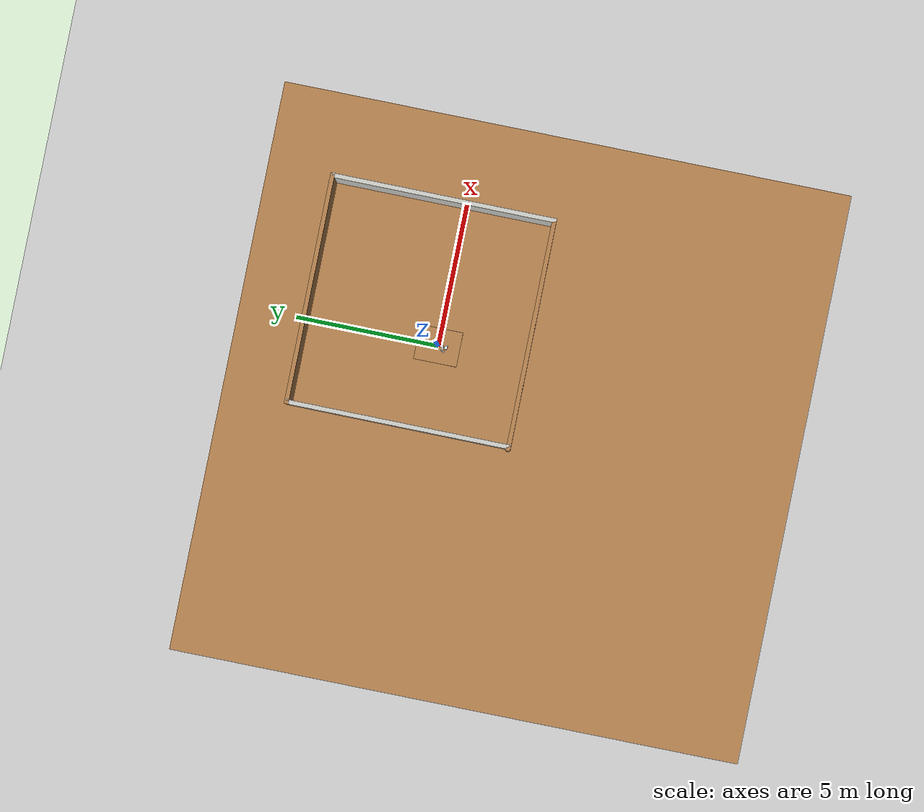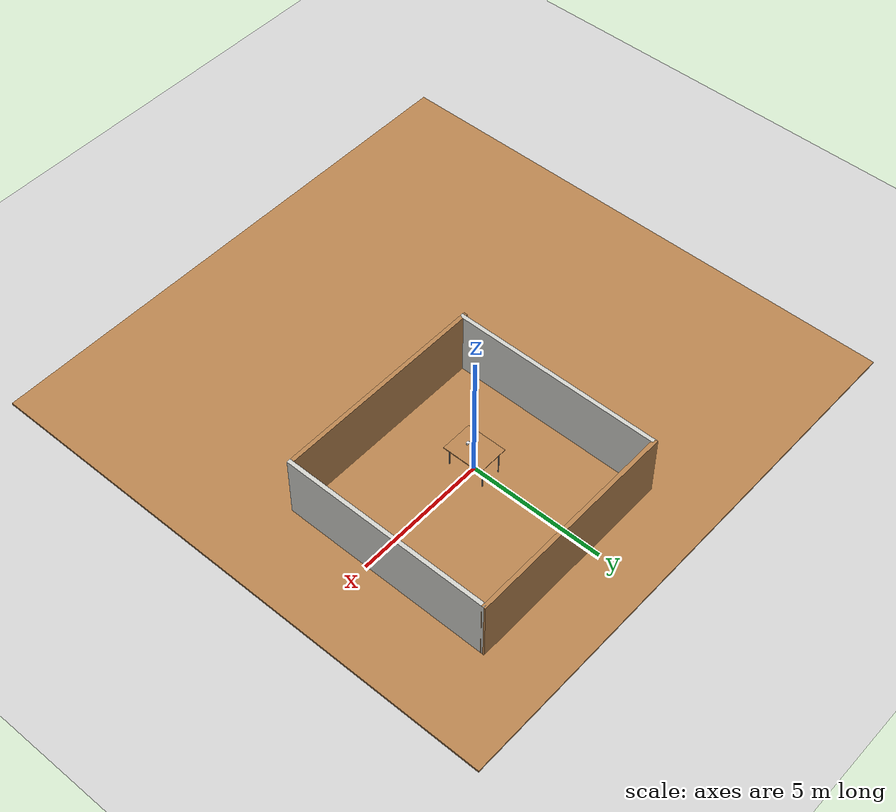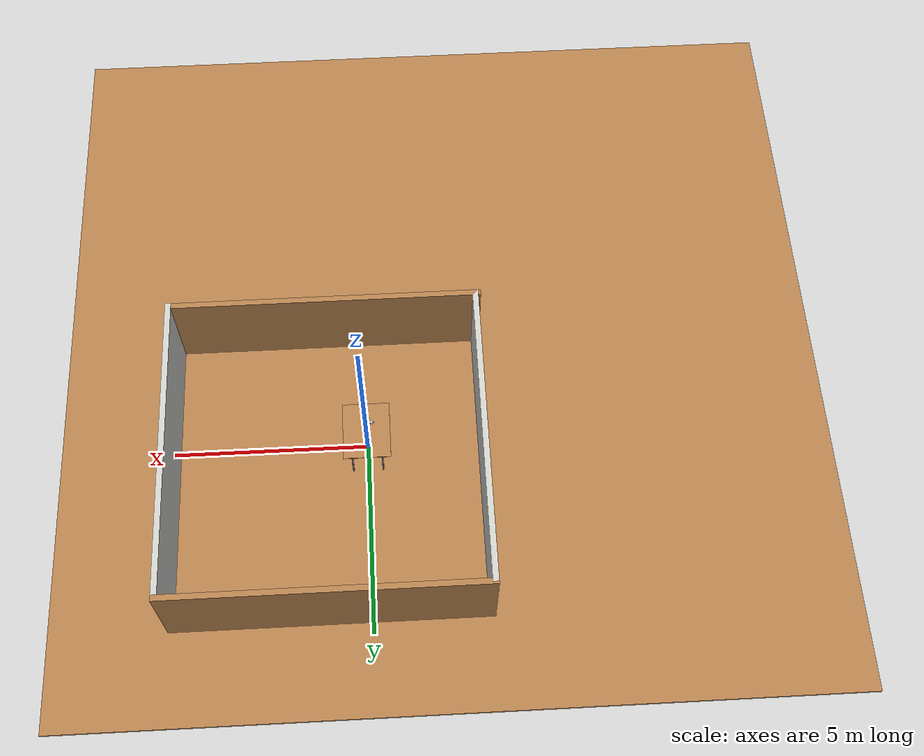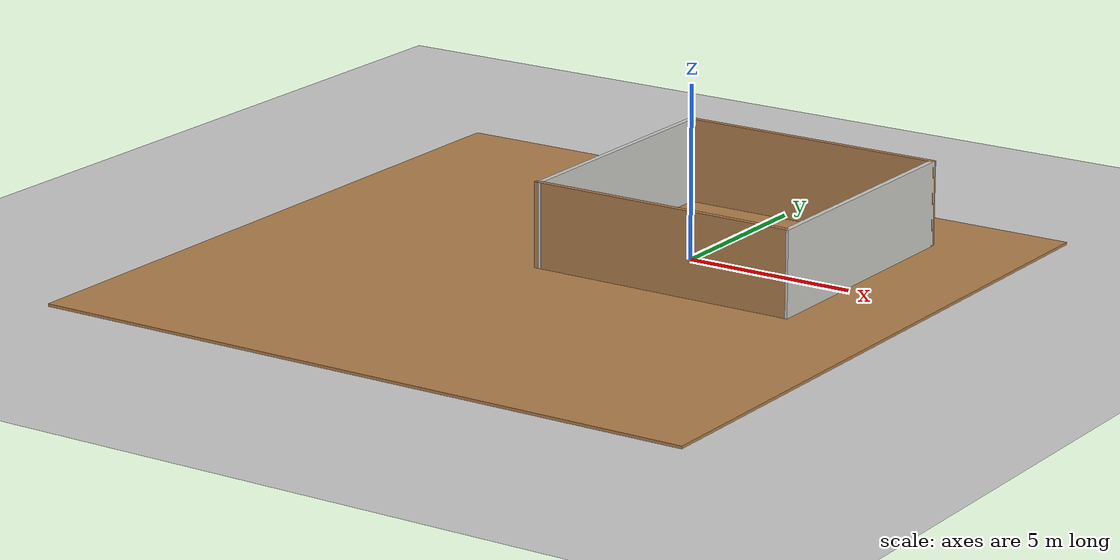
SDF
<sdf version="1.6">
 <world name="default">
  <model name="ground_plane">
   <static>1</static>
   <link name="link">
    <collision name="collision">
     <geometry><plane><normal>0 0 1</normal><size>100 100</size></plane></geometry>
     <surface><friction><ode><mu>100</mu><mu2>50</mu2></ode></friction></surface>
    </collision>
    <visual name="visual">
     <cast_shadows>0</cast_shadows>
     <geometry><plane><normal>0 0 1</normal><size>100 100</size></plane></geometry>
     <material>
      <script><uri>file://media/materials/scripts/gazebo.material</uri><name>Gazebo/Grey</name></script>
     </material>
    </visual>
   </link>
  </model>
  <gravity>0 0 -9.8</gravity>
  <magnetic_field>6e-06 2.3e-05 -4.2e-05</magnetic_field>
  <atmosphere type="adiabatic"/>
  <physics name="default_physics" default="0" type="ode">
   <max_step_size>0.001</max_step_size>
   <real_time_factor>1</real_time_factor>
   <real_time_update_rate>1000</real_time_update_rate>
  </physics>
  <scene><ambient>0.4 0.4 0.4 1</ambient><background>0.7 0.7 0.7 1</background><shadows>1</shadows></scene>
  <spherical_coordinates>
   <surface_model>EARTH_WGS84</surface_model>
   <latitude_deg>0</latitude_deg>
   <longitude_deg>0</longitude_deg>
   <elevation>0</elevation>
   <heading_deg>0</heading_deg>
  </spherical_coordinates>
  <model name="IMR_table">
   <static>1</static>
   <link name="link">
    <collision name="surface">
     <pose>0 0 1 0 -0 0</pose>
     <geometry><box><size>1.5 1.2 0.03</size></box></geometry>
     <surface><friction><ode><mu>0.6</mu><mu2>0.6</mu2></ode></friction></surface>
    </collision>
    <visual name="visual1">
     <pose>0 0 1 0 -0 0</pose>
     <geometry><box><size>1.5 1.2 0.03</size></box></geometry>
     <material>
      <script>
       <uri>model://IMR_table/materials/scripts/</uri>
       <uri>model://IMR_table/materials/textures/</uri>
       <name>LIGHTWOOD</name>
      </script>
     </material>
    </visual>
    <collision name="front_left_leg">
     <pose>0.68 0.38 0.5 0 -0 0</pose>
     <geometry><cylinder><radius>0.02</radius><length>1</length></cylinder></geometry>
    </collision>
    <visual name="front_left_leg">
     <pose>0.68 0.38 0.5 0 -0 0</pose>
     <geometry><cylinder><radius>0.02</radius><length>1</length></cylinder></geometry>
     <material>
      <script><uri>file://media/materials/scripts/gazebo.material</uri><name>Gazebo/Grey</name></script>
     </material>
    </visual>
    <collision name="front_right_leg">
     <pose>0.68 -0.38 0.5 0 -0 0</pose>
     <geometry><cylinder><radius>0.02</radius><length>1</length></cylinder></geometry>
    </collision>
    <visual name="front_right_leg">
     <pose>0.68 -0.38 0.5 0 -0 0</pose>
     <geometry><cylinder><radius>0.02</radius><length>1</length></cylinder></geometry>
     <material>
      <script><uri>file://media/materials/scripts/gazebo.material</uri><name>Gazebo/Grey</name></script>
     </material>
    </visual>
    <collision name="back_right_leg">
     <pose>-0.68 -0.38 0.5 0 -0 0</pose>
     <geometry><cylinder><radius>0.02</radius><length>1</length></cylinder></geometry>
    </collision>
    <visual name="back_right_leg">
     <pose>-0.68 -0.38 0.5 0 -0 0</pose>
     <geometry><cylinder><radius>0.02</radius><length>1</length></cylinder></geometry>
     <material>
      <script><uri>file://media/materials/scripts/gazebo.material</uri><name>Gazebo/Grey</name></script>
     </material>
    </visual>
    <collision name="back_left_leg">
     <pose>-0.68 0.38 0.5 0 -0 0</pose>
     <geometry><cylinder><radius>0.02</radius><length>1</length></cylinder></geometry>
    </collision>
    <visual name="back_left_leg">
     <pose>-0.68 0.38 0.5 0 -0 0</pose>
     <geometry><cylinder><radius>0.02</radius><length>1</length></cylinder></geometry>
     <material>
      <script><uri>file://media/materials/scripts/gazebo.material</uri><name>Gazebo/Grey</name></script>
     </material>
    </visual>
   </link>
   <pose>0 0 0 0 0 -1.5708</pose>
  </model>
  <model name="densefusion_chimp">
   <link name="link_2">
    <pose>0 0 0.045854 0 -0 0</pose>
    <visual name="visual">
     <geometry>
      <mesh><uri>model://densefusion_chimp/meshes/chimp.dae</uri><scale>0.001 0.001 0.001</scale></mesh>
     </geometry>
     <material>
      <lighting>1</lighting>
      <ambient>0 1 0 1</ambient>
      <diffuse>1 1 1 1</diffuse>
      <specular>0.01 0.01 0.01 1</specular>
      <emissive>0 0 0 1</emissive>
     </material>
    </visual>
    <collision name="collision">
     <geometry>
      <mesh><uri>model://densefusion_chimp/meshes/chimp.dae</uri><scale>0.001 0.001 0.001</scale></mesh>
     </geometry>
    </collision>
   </link>
   <static>1</static>
   <pose>-0.163166 -0.205481 1.015 0 0 -2.03728</pose>
  </model>
  <model name="densefusion_drill">
   <link name="link_2">
    <pose>0 0 0.103768 0 -0 0</pose>
    <visual name="visual">
     <geometry>
      <mesh><uri>model://densefusion_drill/meshes/drill.dae</uri><scale>0.001 0.001 0.001</scale></mesh>
     </geometry>
     <material>
      <lighting>1</lighting>
      <ambient>0 1 1 1</ambient>
      <diffuse>1 1 1 1</diffuse>
      <specular>0.01 0.01 0.01 1</specular>
      <emissive>0 0 0 1</emissive>
     </material>
    </visual>
    <collision name="collision">
     <geometry>
      <mesh><uri>model://densefusion_drill/meshes/drill.dae</uri><scale>0.001 0.001 0.001</scale></mesh>
     </geometry>
    </collision>
   </link>
   <static>1</static>
   <pose>-0.050155 -0.150925 1.015 0 -0 0</pose>
  </model>
  <model name="densefusion_egg">
   <link name="link_2">
    <pose>0 0 0.034419 0 -0 0</pose>
    <visual name="visual">
     <geometry>
      <mesh><uri>model://densefusion_egg/meshes/egg.dae</uri><scale>0.001 0.001 0.001</scale></mesh>
     </geometry>
     <material>
      <lighting>1</lighting>
      <ambient>1 0 0 1</ambient>
      <diffuse>1 1 1 1</diffuse>
      <specular>0.01 0.01 0.01 1</specular>
      <emissive>0 0 0 1</emissive>
     </material>
    </visual>
    <collision name="collision">
     <geometry>
      <mesh><uri>model://densefusion_egg/meshes/egg.dae</uri><scale>0.001 0.001 0.001</scale></mesh>
     </geometry>
    </collision>
   </link>
   <static>1</static>
   <pose>-0.01794 -0.272658 1.015 0 -0 0</pose>
  </model>
  <model name="wooden_plane">
   <static>1</static>
   <link name="link">
    <collision name="collision"><geometry><box><size>20 20 0.1</size></box></geometry></collision>
    <visual name="visual">
     <cast_shadows>0</cast_shadows>
     <geometry><box><size>20 20 0.1</size></box></geometry>
     <material>
      <script>
       <uri>model://wooden_plane/materials/scripts</uri>
       <uri>model://wooden_plane/materials/textures</uri>
       <name>vrc/wooden</name>
      </script>
     </material>
    </visual>
   </link>
   <pose>-2.06915 -2.95869 0 0 -0 0</pose>
  </model>
  <model name="IMR_wall_2">
   <pose>0.95996 0.793024 0 0 -0 0</pose>
   <link name="Wall_0">
    <collision name="Wall_0_Collision">
     <geometry><box><size>7.79005 0.15 2.5</size></box></geometry>
     <pose>0 0 1.25 0 -0 0</pose>
    </collision>
    <visual name="Wall_0_Visual">
     <pose>0 0 1.25 0 -0 0</pose>
     <geometry><box><size>7.79005 0.15 2.5</size></box></geometry>
     <material>
      <script><uri>file://media/materials/scripts/gazebo.material</uri><name>Gazebo/CeilingTiled</name></script>
      <ambient>1 1 1 1</ambient>
     </material>
     <meta><layer>0</layer></meta>
    </visual>
    <pose>-3.89468 -0.030319 0 0 0 -1.57341</pose>
   </link>
   <link name="Wall_1">
    <collision name="Wall_1_Collision">
     <geometry><box><size>8 0.15 2.5</size></box></geometry>
     <pose>0 0 1.25 0 -0 0</pose>
    </collision>
    <visual name="Wall_1_Visual">
     <pose>0 0 1.25 0 -0 0</pose>
     <geometry><box><size>8 0.15 2.5</size></box></geometry>
     <material>
      <script><uri>file://media/materials/scripts/gazebo.material</uri><name>Gazebo/Wood</name></script>
      <ambient>1 1 1 1</ambient>
     </material>
     <meta><layer>0</layer></meta>
    </visual>
    <pose>-0.040515 -3.85033 0 0 -0 0</pose>
   </link>
   <link name="Wall_2">
    <collision name="Wall_2_Collision">
     <geometry><box><size>7.79005 0.15 2.5</size></box></geometry>
     <pose>0 0 1.25 0 -0 0</pose>
    </collision>
    <visual name="Wall_2_Visual">
     <pose>0 0 1.25 0 -0 0</pose>
     <geometry><box><size>7.79005 0.15 2.5</size></box></geometry>
     <material>
      <script><uri>file://media/materials/scripts/gazebo.material</uri><name>Gazebo/CeilingTiled</name></script>
      <ambient>1 1 1 1</ambient>
     </material>
     <meta><layer>0</layer></meta>
    </visual>
    <pose>3.95532 -0.030319 0 0 -0 1.56818</pose>
   </link>
   <link name="Wall_3">
    <collision name="Wall_3_Collision">
     <geometry><box><size>8 0.15 2.5</size></box></geometry>
     <pose>0 0 1.25 0 -0 0</pose>
    </collision>
    <visual name="Wall_3_Visual">
     <pose>0 0 1.25 0 -0 0</pose>
     <geometry><box><size>8 0.15 2.5</size></box></geometry>
     <material>
      <script><uri>file://media/materials/scripts/gazebo.material</uri><name>Gazebo/Wood</name></script>
      <ambient>1 1 1 1</ambient>
     </material>
     <meta><layer>0</layer></meta>
    </visual>
    <pose>0.04032 3.85053 0 0 -0 3.14159</pose>
   </link>
   <static>1</static>
  </model>
  <light name="user_point_light_0" type="point">
   <pose>0.345977 1.64453 1 0 -0 0</pose>
   <diffuse>0.5 0.5 0.5 1</diffuse>
   <specular>0.1 0.1 0.1 1</specular>
   <attenuation>
    <range>20</range>
    <constant>0.5</constant>
    <linear>0.01</linear>
    <quadratic>0.001</quadratic>
   </attenuation>
   <cast_shadows>0</cast_shadows>
   <direction>0 0 -1</direction>
  </light>
 </world>
</sdf>
